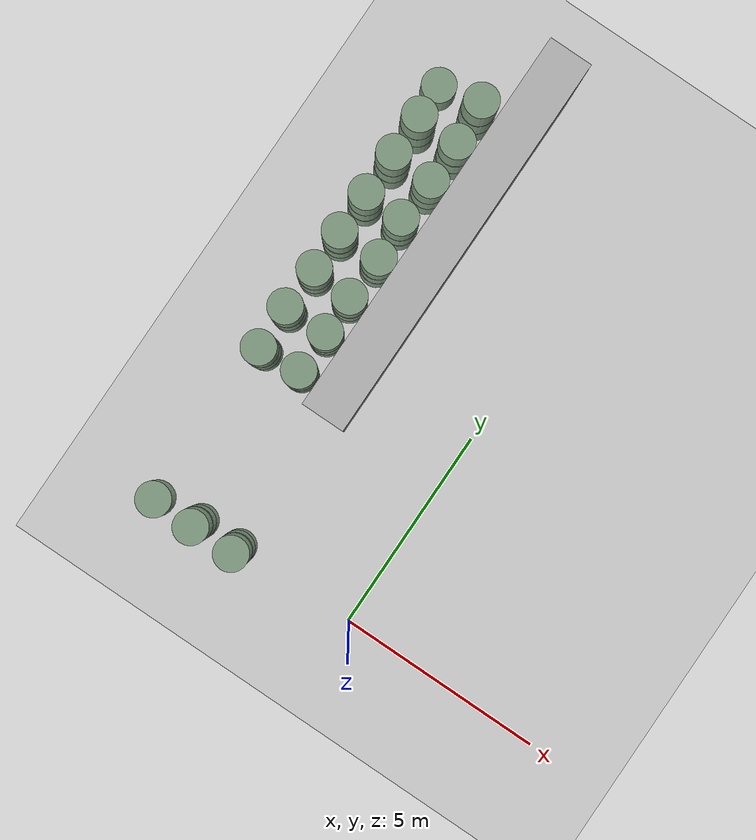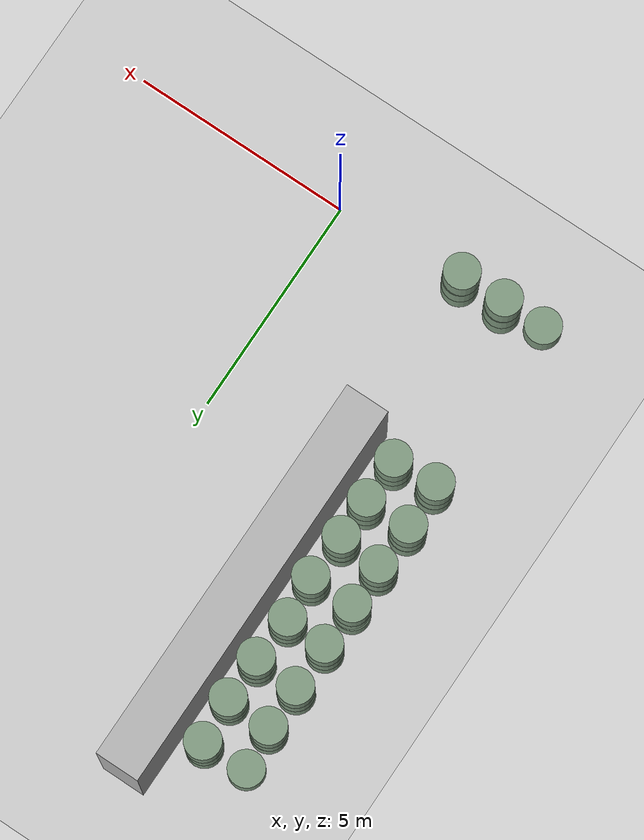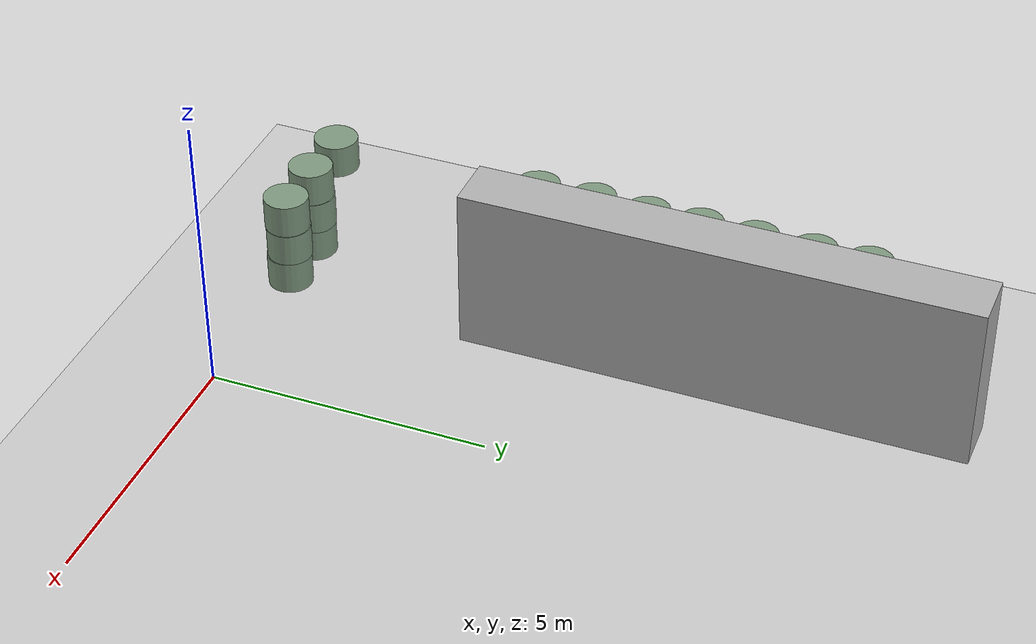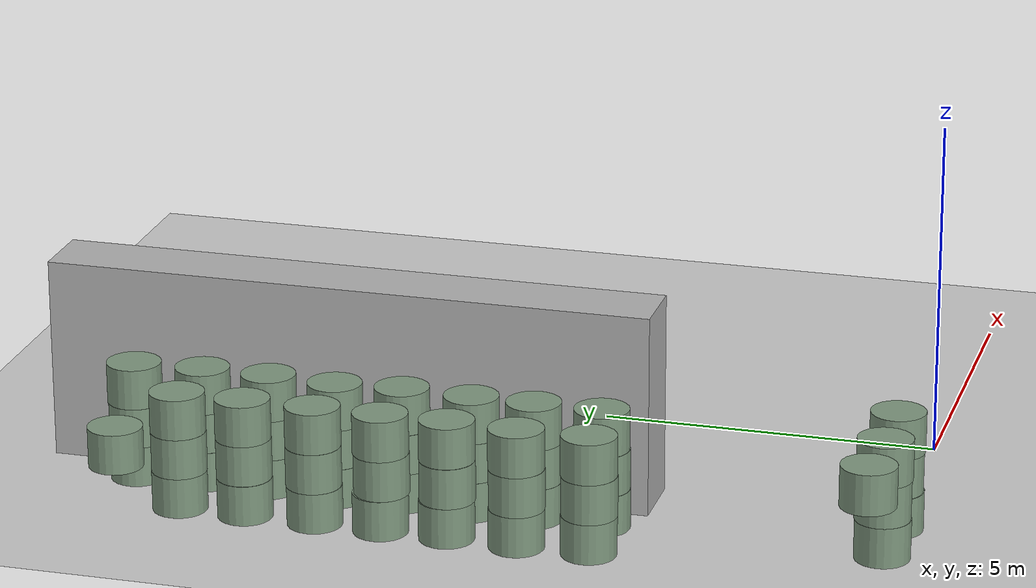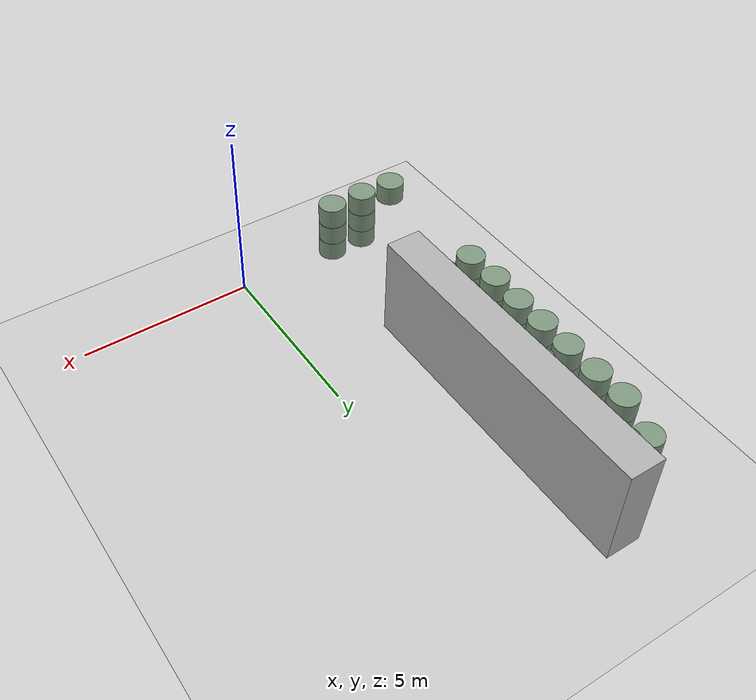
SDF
<sdf version="1.6">
 <world name="default">
  <include><uri>model://ground_plane</uri></include>
  <model name="wall_3">
   <pose>-3.0 8.0 1.5 0 -0 0</pose>
   <static>True</static>
   <link name="link">
    <inertial>
     <mass>100</mass>
     <inertia>
      <ixx>0.166667</ixx>
      <ixy>0</ixy>
      <ixz>0</ixz>
      <iyy>0.166667</iyy>
      <iyz>0</iyz>
      <izz>0.166667</izz>
     </inertia>
    </inertial>
    <collision name="collision"><geometry><box><size>1.0 9.0 3.0</size></box></geometry></collision>
    <visual name="visual">
     <geometry><box><size>1.0 9.0 3.0</size></box></geometry>
     <material><ambient>0.7 0.7 0.7 1</ambient><diffuse>0.7 0.7 0.7 1</diffuse></material>
    </visual>
   </link>
  </model>
  <model name="unit_cylinder_73">
   <pose>-5.04021471398 0.0397280246064 1.5 0 -0 0</pose>
   <static>True</static>
   <link name="link">
    <inertial>
     <mass>100</mass>
     <inertia><ixx>0.145833</ixx><ixy>0</ixy><ixz>0</ixz><iyy>0.145833</iyy><iyz>0</iyz><izz>0.125</izz></inertia>
    </inertial>
    <collision name="collision">
     <geometry><cylinder><radius>0.4</radius><length>0.6</length></cylinder></geometry>
     <max_contacts>100</max_contacts>
    </collision>
    <visual name="visual">
     <geometry><cylinder><radius>0.4</radius><length>0.6</length></cylinder></geometry>
     <material><ambient>0.5 0.6 0.5 1</ambient><diffuse>0.5 0.6 0.5 1</diffuse></material>
    </visual>
   </link>
  </model>
  <model name="unit_cylinder_74">
   <pose>-4.99387593713 3.97930766944 0.3 0 -0 0</pose>
   <static>True</static>
   <link name="link">
    <inertial>
     <mass>100</mass>
     <inertia><ixx>0.145833</ixx><ixy>0</ixy><ixz>0</ixz><iyy>0.145833</iyy><iyz>0</iyz><izz>0.125</izz></inertia>
    </inertial>
    <collision name="collision">
     <geometry><cylinder><radius>0.4</radius><length>0.6</length></cylinder></geometry>
     <max_contacts>100</max_contacts>
    </collision>
    <visual name="visual">
     <geometry><cylinder><radius>0.4</radius><length>0.6</length></cylinder></geometry>
     <material><ambient>0.5 0.6 0.5 1</ambient><diffuse>0.5 0.6 0.5 1</diffuse></material>
    </visual>
   </link>
  </model>
  <model name="unit_cylinder_75">
   <pose>-5.00287815324 3.96971542466 0.9 0 -0 0</pose>
   <static>True</static>
   <link name="link">
    <inertial>
     <mass>100</mass>
     <inertia><ixx>0.145833</ixx><ixy>0</ixy><ixz>0</ixz><iyy>0.145833</iyy><iyz>0</iyz><izz>0.125</izz></inertia>
    </inertial>
    <collision name="collision">
     <geometry><cylinder><radius>0.4</radius><length>0.6</length></cylinder></geometry>
     <max_contacts>100</max_contacts>
    </collision>
    <visual name="visual">
     <geometry><cylinder><radius>0.4</radius><length>0.6</length></cylinder></geometry>
     <material><ambient>0.5 0.6 0.5 1</ambient><diffuse>0.5 0.6 0.5 1</diffuse></material>
    </visual>
   </link>
  </model>
  <model name="unit_cylinder_76">
   <pose>-5.00889074556 3.97547470368 1.5 0 -0 0</pose>
   <static>True</static>
   <link name="link">
    <inertial>
     <mass>100</mass>
     <inertia><ixx>0.145833</ixx><ixy>0</ixy><ixz>0</ixz><iyy>0.145833</iyy><iyz>0</iyz><izz>0.125</izz></inertia>
    </inertial>
    <collision name="collision">
     <geometry><cylinder><radius>0.4</radius><length>0.6</length></cylinder></geometry>
     <max_contacts>100</max_contacts>
    </collision>
    <visual name="visual">
     <geometry><cylinder><radius>0.4</radius><length>0.6</length></cylinder></geometry>
     <material><ambient>0.5 0.6 0.5 1</ambient><diffuse>0.5 0.6 0.5 1</diffuse></material>
    </visual>
   </link>
  </model>
  <model name="unit_cylinder_77">
   <pose>-5.02037749495 5.01862694943 0.3 0 -0 0</pose>
   <static>True</static>
   <link name="link">
    <inertial>
     <mass>100</mass>
     <inertia><ixx>0.145833</ixx><ixy>0</ixy><ixz>0</ixz><iyy>0.145833</iyy><iyz>0</iyz><izz>0.125</izz></inertia>
    </inertial>
    <collision name="collision">
     <geometry><cylinder><radius>0.4</radius><length>0.6</length></cylinder></geometry>
     <max_contacts>100</max_contacts>
    </collision>
    <visual name="visual">
     <geometry><cylinder><radius>0.4</radius><length>0.6</length></cylinder></geometry>
     <material><ambient>0.5 0.6 0.5 1</ambient><diffuse>0.5 0.6 0.5 1</diffuse></material>
    </visual>
   </link>
  </model>
  <model name="unit_cylinder_78">
   <pose>-5.02425778565 5.01079845286 0.9 0 -0 0</pose>
   <static>True</static>
   <link name="link">
    <inertial>
     <mass>100</mass>
     <inertia><ixx>0.145833</ixx><ixy>0</ixy><ixz>0</ixz><iyy>0.145833</iyy><iyz>0</iyz><izz>0.125</izz></inertia>
    </inertial>
    <collision name="collision">
     <geometry><cylinder><radius>0.4</radius><length>0.6</length></cylinder></geometry>
     <max_contacts>100</max_contacts>
    </collision>
    <visual name="visual">
     <geometry><cylinder><radius>0.4</radius><length>0.6</length></cylinder></geometry>
     <material><ambient>0.5 0.6 0.5 1</ambient><diffuse>0.5 0.6 0.5 1</diffuse></material>
    </visual>
   </link>
  </model>
  <model name="unit_cylinder_79">
   <pose>-5.02847744093 5.01702215098 1.5 0 -0 0</pose>
   <static>True</static>
   <link name="link">
    <inertial>
     <mass>100</mass>
     <inertia><ixx>0.145833</ixx><ixy>0</ixy><ixz>0</ixz><iyy>0.145833</iyy><iyz>0</iyz><izz>0.125</izz></inertia>
    </inertial>
    <collision name="collision">
     <geometry><cylinder><radius>0.4</radius><length>0.6</length></cylinder></geometry>
     <max_contacts>100</max_contacts>
    </collision>
    <visual name="visual">
     <geometry><cylinder><radius>0.4</radius><length>0.6</length></cylinder></geometry>
     <material><ambient>0.5 0.6 0.5 1</ambient><diffuse>0.5 0.6 0.5 1</diffuse></material>
    </visual>
   </link>
  </model>
  <model name="unit_cylinder_80">
   <pose>-4.9890560584 6.04523578018 0.3 0 -0 0</pose>
   <static>True</static>
   <link name="link">
    <inertial>
     <mass>100</mass>
     <inertia><ixx>0.145833</ixx><ixy>0</ixy><ixz>0</ixz><iyy>0.145833</iyy><iyz>0</iyz><izz>0.125</izz></inertia>
    </inertial>
    <collision name="collision">
     <geometry><cylinder><radius>0.4</radius><length>0.6</length></cylinder></geometry>
     <max_contacts>100</max_contacts>
    </collision>
    <visual name="visual">
     <geometry><cylinder><radius>0.4</radius><length>0.6</length></cylinder></geometry>
     <material><ambient>0.5 0.6 0.5 1</ambient><diffuse>0.5 0.6 0.5 1</diffuse></material>
    </visual>
   </link>
  </model>
  <model name="unit_cylinder_81">
   <pose>-4.98558762017 6.03283842369 0.9 0 -0 0</pose>
   <static>True</static>
   <link name="link">
    <inertial>
     <mass>100</mass>
     <inertia><ixx>0.145833</ixx><ixy>0</ixy><ixz>0</ixz><iyy>0.145833</iyy><iyz>0</iyz><izz>0.125</izz></inertia>
    </inertial>
    <collision name="collision">
     <geometry><cylinder><radius>0.4</radius><length>0.6</length></cylinder></geometry>
     <max_contacts>100</max_contacts>
    </collision>
    <visual name="visual">
     <geometry><cylinder><radius>0.4</radius><length>0.6</length></cylinder></geometry>
     <material><ambient>0.5 0.6 0.5 1</ambient><diffuse>0.5 0.6 0.5 1</diffuse></material>
    </visual>
   </link>
  </model>
  <model name="unit_cylinder_82">
   <pose>-4.97623334537 6.03796178557 1.5 0 -0 0</pose>
   <static>True</static>
   <link name="link">
    <inertial>
     <mass>100</mass>
     <inertia><ixx>0.145833</ixx><ixy>0</ixy><ixz>0</ixz><iyy>0.145833</iyy><iyz>0</iyz><izz>0.125</izz></inertia>
    </inertial>
    <collision name="collision">
     <geometry><cylinder><radius>0.4</radius><length>0.6</length></cylinder></geometry>
     <max_contacts>100</max_contacts>
    </collision>
    <visual name="visual">
     <geometry><cylinder><radius>0.4</radius><length>0.6</length></cylinder></geometry>
     <material><ambient>0.5 0.6 0.5 1</ambient><diffuse>0.5 0.6 0.5 1</diffuse></material>
    </visual>
   </link>
  </model>
  <model name="unit_cylinder_83">
   <pose>-4.98692230404 7.01906322322 0.3 0 -0 0</pose>
   <static>True</static>
   <link name="link">
    <inertial>
     <mass>100</mass>
     <inertia><ixx>0.145833</ixx><ixy>0</ixy><ixz>0</ixz><iyy>0.145833</iyy><iyz>0</iyz><izz>0.125</izz></inertia>
    </inertial>
    <collision name="collision">
     <geometry><cylinder><radius>0.4</radius><length>0.6</length></cylinder></geometry>
     <max_contacts>100</max_contacts>
    </collision>
    <visual name="visual">
     <geometry><cylinder><radius>0.4</radius><length>0.6</length></cylinder></geometry>
     <material><ambient>0.5 0.6 0.5 1</ambient><diffuse>0.5 0.6 0.5 1</diffuse></material>
    </visual>
   </link>
  </model>
  <model name="unit_cylinder_84">
   <pose>-4.9704436581 7.00088728899 0.9 0 -0 0</pose>
   <static>True</static>
   <link name="link">
    <inertial>
     <mass>100</mass>
     <inertia><ixx>0.145833</ixx><ixy>0</ixy><ixz>0</ixz><iyy>0.145833</iyy><iyz>0</iyz><izz>0.125</izz></inertia>
    </inertial>
    <collision name="collision">
     <geometry><cylinder><radius>0.4</radius><length>0.6</length></cylinder></geometry>
     <max_contacts>100</max_contacts>
    </collision>
    <visual name="visual">
     <geometry><cylinder><radius>0.4</radius><length>0.6</length></cylinder></geometry>
     <material><ambient>0.5 0.6 0.5 1</ambient><diffuse>0.5 0.6 0.5 1</diffuse></material>
    </visual>
   </link>
  </model>
  <model name="unit_cylinder_85">
   <pose>-4.98132532043 7.00875174795 1.5 0 -0 0</pose>
   <static>True</static>
   <link name="link">
    <inertial>
     <mass>100</mass>
     <inertia><ixx>0.145833</ixx><ixy>0</ixy><ixz>0</ixz><iyy>0.145833</iyy><iyz>0</iyz><izz>0.125</izz></inertia>
    </inertial>
    <collision name="collision">
     <geometry><cylinder><radius>0.4</radius><length>0.6</length></cylinder></geometry>
     <max_contacts>100</max_contacts>
    </collision>
    <visual name="visual">
     <geometry><cylinder><radius>0.4</radius><length>0.6</length></cylinder></geometry>
     <material><ambient>0.5 0.6 0.5 1</ambient><diffuse>0.5 0.6 0.5 1</diffuse></material>
    </visual>
   </link>
  </model>
  <model name="unit_cylinder_86">
   <pose>-4.97207345627 7.99857737981 0.3 0 -0 0</pose>
   <static>True</static>
   <link name="link">
    <inertial>
     <mass>100</mass>
     <inertia><ixx>0.145833</ixx><ixy>0</ixy><ixz>0</ixz><iyy>0.145833</iyy><iyz>0</iyz><izz>0.125</izz></inertia>
    </inertial>
    <collision name="collision">
     <geometry><cylinder><radius>0.4</radius><length>0.6</length></cylinder></geometry>
     <max_contacts>100</max_contacts>
    </collision>
    <visual name="visual">
     <geometry><cylinder><radius>0.4</radius><length>0.6</length></cylinder></geometry>
     <material><ambient>0.5 0.6 0.5 1</ambient><diffuse>0.5 0.6 0.5 1</diffuse></material>
    </visual>
   </link>
  </model>
  <model name="unit_cylinder_87">
   <pose>-4.97549348963 8.00673402926 0.9 0 -0 0</pose>
   <static>True</static>
   <link name="link">
    <inertial>
     <mass>100</mass>
     <inertia><ixx>0.145833</ixx><ixy>0</ixy><ixz>0</ixz><iyy>0.145833</iyy><iyz>0</iyz><izz>0.125</izz></inertia>
    </inertial>
    <collision name="collision">
     <geometry><cylinder><radius>0.4</radius><length>0.6</length></cylinder></geometry>
     <max_contacts>100</max_contacts>
    </collision>
    <visual name="visual">
     <geometry><cylinder><radius>0.4</radius><length>0.6</length></cylinder></geometry>
     <material><ambient>0.5 0.6 0.5 1</ambient><diffuse>0.5 0.6 0.5 1</diffuse></material>
    </visual>
   </link>
  </model>
  <model name="unit_cylinder_88">
   <pose>-4.96968289684 8.00892009027 1.5 0 -0 0</pose>
   <static>True</static>
   <link name="link">
    <inertial>
     <mass>100</mass>
     <inertia><ixx>0.145833</ixx><ixy>0</ixy><ixz>0</ixz><iyy>0.145833</iyy><iyz>0</iyz><izz>0.125</izz></inertia>
    </inertial>
    <collision name="collision">
     <geometry><cylinder><radius>0.4</radius><length>0.6</length></cylinder></geometry>
     <max_contacts>100</max_contacts>
    </collision>
    <visual name="visual">
     <geometry><cylinder><radius>0.4</radius><length>0.6</length></cylinder></geometry>
     <material><ambient>0.5 0.6 0.5 1</ambient><diffuse>0.5 0.6 0.5 1</diffuse></material>
    </visual>
   </link>
  </model>
  <model name="unit_cylinder_89">
   <pose>-4.96635382965 9.04311331205 0.3 0 -0 0</pose>
   <static>True</static>
   <link name="link">
    <inertial>
     <mass>100</mass>
     <inertia><ixx>0.145833</ixx><ixy>0</ixy><ixz>0</ixz><iyy>0.145833</iyy><iyz>0</iyz><izz>0.125</izz></inertia>
    </inertial>
    <collision name="collision">
     <geometry><cylinder><radius>0.4</radius><length>0.6</length></cylinder></geometry>
     <max_contacts>100</max_contacts>
    </collision>
    <visual name="visual">
     <geometry><cylinder><radius>0.4</radius><length>0.6</length></cylinder></geometry>
     <material><ambient>0.5 0.6 0.5 1</ambient><diffuse>0.5 0.6 0.5 1</diffuse></material>
    </visual>
   </link>
  </model>
  <model name="unit_cylinder_90">
   <pose>-4.95809822181 9.04903456977 0.9 0 -0 0</pose>
   <static>True</static>
   <link name="link">
    <inertial>
     <mass>100</mass>
     <inertia><ixx>0.145833</ixx><ixy>0</ixy><ixz>0</ixz><iyy>0.145833</iyy><iyz>0</iyz><izz>0.125</izz></inertia>
    </inertial>
    <collision name="collision">
     <geometry><cylinder><radius>0.4</radius><length>0.6</length></cylinder></geometry>
     <max_contacts>100</max_contacts>
    </collision>
    <visual name="visual">
     <geometry><cylinder><radius>0.4</radius><length>0.6</length></cylinder></geometry>
     <material><ambient>0.5 0.6 0.5 1</ambient><diffuse>0.5 0.6 0.5 1</diffuse></material>
    </visual>
   </link>
  </model>
  <model name="unit_cylinder_91">
   <pose>-4.96240943617 9.05095245156 1.5 0 -0 0</pose>
   <static>True</static>
   <link name="link">
    <inertial>
     <mass>100</mass>
     <inertia><ixx>0.145833</ixx><ixy>0</ixy><ixz>0</ixz><iyy>0.145833</iyy><iyz>0</iyz><izz>0.125</izz></inertia>
    </inertial>
    <collision name="collision">
     <geometry><cylinder><radius>0.4</radius><length>0.6</length></cylinder></geometry>
     <max_contacts>100</max_contacts>
    </collision>
    <visual name="visual">
     <geometry><cylinder><radius>0.4</radius><length>0.6</length></cylinder></geometry>
     <material><ambient>0.5 0.6 0.5 1</ambient><diffuse>0.5 0.6 0.5 1</diffuse></material>
    </visual>
   </link>
  </model>
  <model name="unit_cylinder_92">
   <pose>-4.94802869582 10.0317854481 0.3 0 -0 0</pose>
   <static>True</static>
   <link name="link">
    <inertial>
     <mass>100</mass>
     <inertia><ixx>0.145833</ixx><ixy>0</ixy><ixz>0</ixz><iyy>0.145833</iyy><iyz>0</iyz><izz>0.125</izz></inertia>
    </inertial>
    <collision name="collision">
     <geometry><cylinder><radius>0.4</radius><length>0.6</length></cylinder></geometry>
     <max_contacts>100</max_contacts>
    </collision>
    <visual name="visual">
     <geometry><cylinder><radius>0.4</radius><length>0.6</length></cylinder></geometry>
     <material><ambient>0.5 0.6 0.5 1</ambient><diffuse>0.5 0.6 0.5 1</diffuse></material>
    </visual>
   </link>
  </model>
  <model name="unit_cylinder_93">
   <pose>-4.9606607863 10.0241177991 0.9 0 -0 0</pose>
   <static>True</static>
   <link name="link">
    <inertial>
     <mass>100</mass>
     <inertia><ixx>0.145833</ixx><ixy>0</ixy><ixz>0</ixz><iyy>0.145833</iyy><iyz>0</iyz><izz>0.125</izz></inertia>
    </inertial>
    <collision name="collision">
     <geometry><cylinder><radius>0.4</radius><length>0.6</length></cylinder></geometry>
     <max_contacts>100</max_contacts>
    </collision>
    <visual name="visual">
     <geometry><cylinder><radius>0.4</radius><length>0.6</length></cylinder></geometry>
     <material><ambient>0.5 0.6 0.5 1</ambient><diffuse>0.5 0.6 0.5 1</diffuse></material>
    </visual>
   </link>
  </model>
  <model name="unit_cylinder_94">
   <pose>-4.96216552182 10.0285224961 1.5 0 -0 0</pose>
   <static>True</static>
   <link name="link">
    <inertial>
     <mass>100</mass>
     <inertia><ixx>0.145833</ixx><ixy>0</ixy><ixz>0</ixz><iyy>0.145833</iyy><iyz>0</iyz><izz>0.125</izz></inertia>
    </inertial>
    <collision name="collision">
     <geometry><cylinder><radius>0.4</radius><length>0.6</length></cylinder></geometry>
     <max_contacts>100</max_contacts>
    </collision>
    <visual name="visual">
     <geometry><cylinder><radius>0.4</radius><length>0.6</length></cylinder></geometry>
     <material><ambient>0.5 0.6 0.5 1</ambient><diffuse>0.5 0.6 0.5 1</diffuse></material>
    </visual>
   </link>
  </model>
  <model name="unit_cylinder_96">
   <pose>-5.03437643971 10.9544979243 0.9 0 -0 0</pose>
   <static>True</static>
   <link name="link">
    <inertial>
     <mass>100</mass>
     <inertia><ixx>0.145833</ixx><ixy>0</ixy><ixz>0</ixz><iyy>0.145833</iyy><iyz>0</iyz><izz>0.125</izz></inertia>
    </inertial>
    <collision name="collision">
     <geometry><cylinder><radius>0.4</radius><length>0.6</length></cylinder></geometry>
     <max_contacts>100</max_contacts>
    </collision>
    <visual name="visual">
     <geometry><cylinder><radius>0.4</radius><length>0.6</length></cylinder></geometry>
     <material><ambient>0.5 0.6 0.5 1</ambient><diffuse>0.5 0.6 0.5 1</diffuse></material>
    </visual>
   </link>
  </model>
  <model name="unit_cylinder_110">
   <pose>-4.04723817439 0.00512845933908 0.3 0 -0 0</pose>
   <static>True</static>
   <link name="link">
    <inertial>
     <mass>100</mass>
     <inertia><ixx>0.145833</ixx><ixy>0</ixy><ixz>0</ixz><iyy>0.145833</iyy><iyz>0</iyz><izz>0.125</izz></inertia>
    </inertial>
    <collision name="collision">
     <geometry><cylinder><radius>0.4</radius><length>0.6</length></cylinder></geometry>
     <max_contacts>100</max_contacts>
    </collision>
    <visual name="visual">
     <geometry><cylinder><radius>0.4</radius><length>0.6</length></cylinder></geometry>
     <material><ambient>0.5 0.6 0.5 1</ambient><diffuse>0.5 0.6 0.5 1</diffuse></material>
    </visual>
   </link>
  </model>
  <model name="unit_cylinder_111">
   <pose>-4.04913134576 0.015037255451 0.9 0 -0 0</pose>
   <static>True</static>
   <link name="link">
    <inertial>
     <mass>100</mass>
     <inertia><ixx>0.145833</ixx><ixy>0</ixy><ixz>0</ixz><iyy>0.145833</iyy><iyz>0</iyz><izz>0.125</izz></inertia>
    </inertial>
    <collision name="collision">
     <geometry><cylinder><radius>0.4</radius><length>0.6</length></cylinder></geometry>
     <max_contacts>100</max_contacts>
    </collision>
    <visual name="visual">
     <geometry><cylinder><radius>0.4</radius><length>0.6</length></cylinder></geometry>
     <material><ambient>0.5 0.6 0.5 1</ambient><diffuse>0.5 0.6 0.5 1</diffuse></material>
    </visual>
   </link>
  </model>
  <model name="unit_cylinder_112">
   <pose>-4.05241246791 -0.000900423926262 1.5 0 -0 0</pose>
   <static>True</static>
   <link name="link">
    <inertial>
     <mass>100</mass>
     <inertia><ixx>0.145833</ixx><ixy>0</ixy><ixz>0</ixz><iyy>0.145833</iyy><iyz>0</iyz><izz>0.125</izz></inertia>
    </inertial>
    <collision name="collision">
     <geometry><cylinder><radius>0.4</radius><length>0.6</length></cylinder></geometry>
     <max_contacts>100</max_contacts>
    </collision>
    <visual name="visual">
     <geometry><cylinder><radius>0.4</radius><length>0.6</length></cylinder></geometry>
     <material><ambient>0.5 0.6 0.5 1</ambient><diffuse>0.5 0.6 0.5 1</diffuse></material>
    </visual>
   </link>
  </model>
  <model name="unit_cylinder_113">
   <pose>-4.02140064889 4.03278582527 0.3 0 -0 0</pose>
   <static>True</static>
   <link name="link">
    <inertial>
     <mass>100</mass>
     <inertia><ixx>0.145833</ixx><ixy>0</ixy><ixz>0</ixz><iyy>0.145833</iyy><iyz>0</iyz><izz>0.125</izz></inertia>
    </inertial>
    <collision name="collision">
     <geometry><cylinder><radius>0.4</radius><length>0.6</length></cylinder></geometry>
     <max_contacts>100</max_contacts>
    </collision>
    <visual name="visual">
     <geometry><cylinder><radius>0.4</radius><length>0.6</length></cylinder></geometry>
     <material><ambient>0.5 0.6 0.5 1</ambient><diffuse>0.5 0.6 0.5 1</diffuse></material>
    </visual>
   </link>
  </model>
  <model name="unit_cylinder_114">
   <pose>-4.01565315297 4.03904634977 0.9 0 -0 0</pose>
   <static>True</static>
   <link name="link">
    <inertial>
     <mass>100</mass>
     <inertia><ixx>0.145833</ixx><ixy>0</ixy><ixz>0</ixz><iyy>0.145833</iyy><iyz>0</iyz><izz>0.125</izz></inertia>
    </inertial>
    <collision name="collision">
     <geometry><cylinder><radius>0.4</radius><length>0.6</length></cylinder></geometry>
     <max_contacts>100</max_contacts>
    </collision>
    <visual name="visual">
     <geometry><cylinder><radius>0.4</radius><length>0.6</length></cylinder></geometry>
     <material><ambient>0.5 0.6 0.5 1</ambient><diffuse>0.5 0.6 0.5 1</diffuse></material>
    </visual>
   </link>
  </model>
  <model name="unit_cylinder_115">
   <pose>-4.01993486253 4.04991413479 1.5 0 -0 0</pose>
   <static>True</static>
   <link name="link">
    <inertial>
     <mass>100</mass>
     <inertia><ixx>0.145833</ixx><ixy>0</ixy><ixz>0</ixz><iyy>0.145833</iyy><iyz>0</iyz><izz>0.125</izz></inertia>
    </inertial>
    <collision name="collision">
     <geometry><cylinder><radius>0.4</radius><length>0.6</length></cylinder></geometry>
     <max_contacts>100</max_contacts>
    </collision>
    <visual name="visual">
     <geometry><cylinder><radius>0.4</radius><length>0.6</length></cylinder></geometry>
     <material><ambient>0.5 0.6 0.5 1</ambient><diffuse>0.5 0.6 0.5 1</diffuse></material>
    </visual>
   </link>
  </model>
  <model name="unit_cylinder_116">
   <pose>-4.00896992471 5.03351478211 0.3 0 -0 0</pose>
   <static>True</static>
   <link name="link">
    <inertial>
     <mass>100</mass>
     <inertia><ixx>0.145833</ixx><ixy>0</ixy><ixz>0</ixz><iyy>0.145833</iyy><iyz>0</iyz><izz>0.125</izz></inertia>
    </inertial>
    <collision name="collision">
     <geometry><cylinder><radius>0.4</radius><length>0.6</length></cylinder></geometry>
     <max_contacts>100</max_contacts>
    </collision>
    <visual name="visual">
     <geometry><cylinder><radius>0.4</radius><length>0.6</length></cylinder></geometry>
     <material><ambient>0.5 0.6 0.5 1</ambient><diffuse>0.5 0.6 0.5 1</diffuse></material>
    </visual>
   </link>
  </model>
  <model name="unit_cylinder_117">
   <pose>-4.01016514033 5.03959890592 0.9 0 -0 0</pose>
   <static>True</static>
   <link name="link">
    <inertial>
     <mass>100</mass>
     <inertia><ixx>0.145833</ixx><ixy>0</ixy><ixz>0</ixz><iyy>0.145833</iyy><iyz>0</iyz><izz>0.125</izz></inertia>
    </inertial>
    <collision name="collision">
     <geometry><cylinder><radius>0.4</radius><length>0.6</length></cylinder></geometry>
     <max_contacts>100</max_contacts>
    </collision>
    <visual name="visual">
     <geometry><cylinder><radius>0.4</radius><length>0.6</length></cylinder></geometry>
     <material><ambient>0.5 0.6 0.5 1</ambient><diffuse>0.5 0.6 0.5 1</diffuse></material>
    </visual>
   </link>
  </model>
  <model name="unit_cylinder_118">
   <pose>-4.01353384396 5.04141080113 1.5 0 -0 0</pose>
   <static>True</static>
   <link name="link">
    <inertial>
     <mass>100</mass>
     <inertia><ixx>0.145833</ixx><ixy>0</ixy><ixz>0</ixz><iyy>0.145833</iyy><iyz>0</iyz><izz>0.125</izz></inertia>
    </inertial>
    <collision name="collision">
     <geometry><cylinder><radius>0.4</radius><length>0.6</length></cylinder></geometry>
     <max_contacts>100</max_contacts>
    </collision>
    <visual name="visual">
     <geometry><cylinder><radius>0.4</radius><length>0.6</length></cylinder></geometry>
     <material><ambient>0.5 0.6 0.5 1</ambient><diffuse>0.5 0.6 0.5 1</diffuse></material>
    </visual>
   </link>
  </model>
  <model name="unit_cylinder_119">
   <pose>-4.01533523921 5.95899588876 0.3 0 -0 0</pose>
   <static>True</static>
   <link name="link">
    <inertial>
     <mass>100</mass>
     <inertia><ixx>0.145833</ixx><ixy>0</ixy><ixz>0</ixz><iyy>0.145833</iyy><iyz>0</iyz><izz>0.125</izz></inertia>
    </inertial>
    <collision name="collision">
     <geometry><cylinder><radius>0.4</radius><length>0.6</length></cylinder></geometry>
     <max_contacts>100</max_contacts>
    </collision>
    <visual name="visual">
     <geometry><cylinder><radius>0.4</radius><length>0.6</length></cylinder></geometry>
     <material><ambient>0.5 0.6 0.5 1</ambient><diffuse>0.5 0.6 0.5 1</diffuse></material>
    </visual>
   </link>
  </model>
  <model name="unit_cylinder_120">
   <pose>-4.00525479528 5.95128391176 0.9 0 -0 0</pose>
   <static>True</static>
   <link name="link">
    <inertial>
     <mass>100</mass>
     <inertia><ixx>0.145833</ixx><ixy>0</ixy><ixz>0</ixz><iyy>0.145833</iyy><iyz>0</iyz><izz>0.125</izz></inertia>
    </inertial>
    <collision name="collision">
     <geometry><cylinder><radius>0.4</radius><length>0.6</length></cylinder></geometry>
     <max_contacts>100</max_contacts>
    </collision>
    <visual name="visual">
     <geometry><cylinder><radius>0.4</radius><length>0.6</length></cylinder></geometry>
     <material><ambient>0.5 0.6 0.5 1</ambient><diffuse>0.5 0.6 0.5 1</diffuse></material>
    </visual>
   </link>
  </model>
  <model name="unit_cylinder_121">
   <pose>-4.00914709232 5.95970747639 1.5 0 -0 0</pose>
   <static>True</static>
   <link name="link">
    <inertial>
     <mass>100</mass>
     <inertia><ixx>0.145833</ixx><ixy>0</ixy><ixz>0</ixz><iyy>0.145833</iyy><iyz>0</iyz><izz>0.125</izz></inertia>
    </inertial>
    <collision name="collision">
     <geometry><cylinder><radius>0.4</radius><length>0.6</length></cylinder></geometry>
     <max_contacts>100</max_contacts>
    </collision>
    <visual name="visual">
     <geometry><cylinder><radius>0.4</radius><length>0.6</length></cylinder></geometry>
     <material><ambient>0.5 0.6 0.5 1</ambient><diffuse>0.5 0.6 0.5 1</diffuse></material>
    </visual>
   </link>
  </model>
  <model name="unit_cylinder_122">
   <pose>-3.95768749601 6.98994476497 0.3 0 -0 0</pose>
   <static>True</static>
   <link name="link">
    <inertial>
     <mass>100</mass>
     <inertia><ixx>0.145833</ixx><ixy>0</ixy><ixz>0</ixz><iyy>0.145833</iyy><iyz>0</iyz><izz>0.125</izz></inertia>
    </inertial>
    <collision name="collision">
     <geometry><cylinder><radius>0.4</radius><length>0.6</length></cylinder></geometry>
     <max_contacts>100</max_contacts>
    </collision>
    <visual name="visual">
     <geometry><cylinder><radius>0.4</radius><length>0.6</length></cylinder></geometry>
     <material><ambient>0.5 0.6 0.5 1</ambient><diffuse>0.5 0.6 0.5 1</diffuse></material>
    </visual>
   </link>
  </model>
  <model name="unit_cylinder_123">
   <pose>-3.96264836524 6.99539087838 0.9 0 -0 0</pose>
   <static>True</static>
   <link name="link">
    <inertial>
     <mass>100</mass>
     <inertia><ixx>0.145833</ixx><ixy>0</ixy><ixz>0</ixz><iyy>0.145833</iyy><iyz>0</iyz><izz>0.125</izz></inertia>
    </inertial>
    <collision name="collision">
     <geometry><cylinder><radius>0.4</radius><length>0.6</length></cylinder></geometry>
     <max_contacts>100</max_contacts>
    </collision>
    <visual name="visual">
     <geometry><cylinder><radius>0.4</radius><length>0.6</length></cylinder></geometry>
     <material><ambient>0.5 0.6 0.5 1</ambient><diffuse>0.5 0.6 0.5 1</diffuse></material>
    </visual>
   </link>
  </model>
  <model name="unit_cylinder_124">
   <pose>-3.95825727506 7.00209275192 1.5 0 -0 0</pose>
   <static>True</static>
   <link name="link">
    <inertial>
     <mass>100</mass>
     <inertia><ixx>0.145833</ixx><ixy>0</ixy><ixz>0</ixz><iyy>0.145833</iyy><iyz>0</iyz><izz>0.125</izz></inertia>
    </inertial>
    <collision name="collision">
     <geometry><cylinder><radius>0.4</radius><length>0.6</length></cylinder></geometry>
     <max_contacts>100</max_contacts>
    </collision>
    <visual name="visual">
     <geometry><cylinder><radius>0.4</radius><length>0.6</length></cylinder></geometry>
     <material><ambient>0.5 0.6 0.5 1</ambient><diffuse>0.5 0.6 0.5 1</diffuse></material>
    </visual>
   </link>
  </model>
  <model name="unit_cylinder_125">
   <pose>-4.03476145688 7.96784662187 0.3 0 -0 0</pose>
   <static>True</static>
   <link name="link">
    <inertial>
     <mass>100</mass>
     <inertia><ixx>0.145833</ixx><ixy>0</ixy><ixz>0</ixz><iyy>0.145833</iyy><iyz>0</iyz><izz>0.125</izz></inertia>
    </inertial>
    <collision name="collision">
     <geometry><cylinder><radius>0.4</radius><length>0.6</length></cylinder></geometry>
     <max_contacts>100</max_contacts>
    </collision>
    <visual name="visual">
     <geometry><cylinder><radius>0.4</radius><length>0.6</length></cylinder></geometry>
     <material><ambient>0.5 0.6 0.5 1</ambient><diffuse>0.5 0.6 0.5 1</diffuse></material>
    </visual>
   </link>
  </model>
  <model name="unit_cylinder_126">
   <pose>-4.03411924976 7.976492077 0.9 0 -0 0</pose>
   <static>True</static>
   <link name="link">
    <inertial>
     <mass>100</mass>
     <inertia><ixx>0.145833</ixx><ixy>0</ixy><ixz>0</ixz><iyy>0.145833</iyy><iyz>0</iyz><izz>0.125</izz></inertia>
    </inertial>
    <collision name="collision">
     <geometry><cylinder><radius>0.4</radius><length>0.6</length></cylinder></geometry>
     <max_contacts>100</max_contacts>
    </collision>
    <visual name="visual">
     <geometry><cylinder><radius>0.4</radius><length>0.6</length></cylinder></geometry>
     <material><ambient>0.5 0.6 0.5 1</ambient><diffuse>0.5 0.6 0.5 1</diffuse></material>
    </visual>
   </link>
  </model>
  <model name="unit_cylinder_127">
   <pose>-4.04630281973 7.97511213229 1.5 0 -0 0</pose>
   <static>True</static>
   <link name="link">
    <inertial>
     <mass>100</mass>
     <inertia><ixx>0.145833</ixx><ixy>0</ixy><ixz>0</ixz><iyy>0.145833</iyy><iyz>0</iyz><izz>0.125</izz></inertia>
    </inertial>
    <collision name="collision">
     <geometry><cylinder><radius>0.4</radius><length>0.6</length></cylinder></geometry>
     <max_contacts>100</max_contacts>
    </collision>
    <visual name="visual">
     <geometry><cylinder><radius>0.4</radius><length>0.6</length></cylinder></geometry>
     <material><ambient>0.5 0.6 0.5 1</ambient><diffuse>0.5 0.6 0.5 1</diffuse></material>
    </visual>
   </link>
  </model>
  <model name="unit_cylinder_128">
   <pose>-3.96976708586 9.00902481902 0.3 0 -0 0</pose>
   <static>True</static>
   <link name="link">
    <inertial>
     <mass>100</mass>
     <inertia><ixx>0.145833</ixx><ixy>0</ixy><ixz>0</ixz><iyy>0.145833</iyy><iyz>0</iyz><izz>0.125</izz></inertia>
    </inertial>
    <collision name="collision">
     <geometry><cylinder><radius>0.4</radius><length>0.6</length></cylinder></geometry>
     <max_contacts>100</max_contacts>
    </collision>
    <visual name="visual">
     <geometry><cylinder><radius>0.4</radius><length>0.6</length></cylinder></geometry>
     <material><ambient>0.5 0.6 0.5 1</ambient><diffuse>0.5 0.6 0.5 1</diffuse></material>
    </visual>
   </link>
  </model>
  <model name="unit_cylinder_129">
   <pose>-3.96663447744 9.00934689566 0.9 0 -0 0</pose>
   <static>True</static>
   <link name="link">
    <inertial>
     <mass>100</mass>
     <inertia><ixx>0.145833</ixx><ixy>0</ixy><ixz>0</ixz><iyy>0.145833</iyy><iyz>0</iyz><izz>0.125</izz></inertia>
    </inertial>
    <collision name="collision">
     <geometry><cylinder><radius>0.4</radius><length>0.6</length></cylinder></geometry>
     <max_contacts>100</max_contacts>
    </collision>
    <visual name="visual">
     <geometry><cylinder><radius>0.4</radius><length>0.6</length></cylinder></geometry>
     <material><ambient>0.5 0.6 0.5 1</ambient><diffuse>0.5 0.6 0.5 1</diffuse></material>
    </visual>
   </link>
  </model>
  <model name="unit_cylinder_130">
   <pose>-3.96627691385 8.99812063202 1.5 0 -0 0</pose>
   <static>True</static>
   <link name="link">
    <inertial>
     <mass>100</mass>
     <inertia><ixx>0.145833</ixx><ixy>0</ixy><ixz>0</ixz><iyy>0.145833</iyy><iyz>0</iyz><izz>0.125</izz></inertia>
    </inertial>
    <collision name="collision">
     <geometry><cylinder><radius>0.4</radius><length>0.6</length></cylinder></geometry>
     <max_contacts>100</max_contacts>
    </collision>
    <visual name="visual">
     <geometry><cylinder><radius>0.4</radius><length>0.6</length></cylinder></geometry>
     <material><ambient>0.5 0.6 0.5 1</ambient><diffuse>0.5 0.6 0.5 1</diffuse></material>
    </visual>
   </link>
  </model>
  <model name="unit_cylinder_131">
   <pose>-3.94969828791 9.98700913324 0.3 0 -0 0</pose>
   <static>True</static>
   <link name="link">
    <inertial>
     <mass>100</mass>
     <inertia><ixx>0.145833</ixx><ixy>0</ixy><ixz>0</ixz><iyy>0.145833</iyy><iyz>0</iyz><izz>0.125</izz></inertia>
    </inertial>
    <collision name="collision">
     <geometry><cylinder><radius>0.4</radius><length>0.6</length></cylinder></geometry>
     <max_contacts>100</max_contacts>
    </collision>
    <visual name="visual">
     <geometry><cylinder><radius>0.4</radius><length>0.6</length></cylinder></geometry>
     <material><ambient>0.5 0.6 0.5 1</ambient><diffuse>0.5 0.6 0.5 1</diffuse></material>
    </visual>
   </link>
  </model>
  <model name="unit_cylinder_132">
   <pose>-3.94395418967 9.99430997422 0.9 0 -0 0</pose>
   <static>True</static>
   <link name="link">
    <inertial>
     <mass>100</mass>
     <inertia><ixx>0.145833</ixx><ixy>0</ixy><ixz>0</ixz><iyy>0.145833</iyy><iyz>0</iyz><izz>0.125</izz></inertia>
    </inertial>
    <collision name="collision">
     <geometry><cylinder><radius>0.4</radius><length>0.6</length></cylinder></geometry>
     <max_contacts>100</max_contacts>
    </collision>
    <visual name="visual">
     <geometry><cylinder><radius>0.4</radius><length>0.6</length></cylinder></geometry>
     <material><ambient>0.5 0.6 0.5 1</ambient><diffuse>0.5 0.6 0.5 1</diffuse></material>
    </visual>
   </link>
  </model>
  <model name="unit_cylinder_133">
   <pose>-3.95926576281 10.0013438346 1.5 0 -0 0</pose>
   <static>True</static>
   <link name="link">
    <inertial>
     <mass>100</mass>
     <inertia><ixx>0.145833</ixx><ixy>0</ixy><ixz>0</ixz><iyy>0.145833</iyy><iyz>0</iyz><izz>0.125</izz></inertia>
    </inertial>
    <collision name="collision">
     <geometry><cylinder><radius>0.4</radius><length>0.6</length></cylinder></geometry>
     <max_contacts>100</max_contacts>
    </collision>
    <visual name="visual">
     <geometry><cylinder><radius>0.4</radius><length>0.6</length></cylinder></geometry>
     <material><ambient>0.5 0.6 0.5 1</ambient><diffuse>0.5 0.6 0.5 1</diffuse></material>
    </visual>
   </link>
  </model>
  <model name="unit_cylinder_134">
   <pose>-4.01608798026 11.0143938788 0.3 0 -0 0</pose>
   <static>True</static>
   <link name="link">
    <inertial>
     <mass>100</mass>
     <inertia><ixx>0.145833</ixx><ixy>0</ixy><ixz>0</ixz><iyy>0.145833</iyy><iyz>0</iyz><izz>0.125</izz></inertia>
    </inertial>
    <collision name="collision">
     <geometry><cylinder><radius>0.4</radius><length>0.6</length></cylinder></geometry>
     <max_contacts>100</max_contacts>
    </collision>
    <visual name="visual">
     <geometry><cylinder><radius>0.4</radius><length>0.6</length></cylinder></geometry>
     <material><ambient>0.5 0.6 0.5 1</ambient><diffuse>0.5 0.6 0.5 1</diffuse></material>
    </visual>
   </link>
  </model>
  <model name="unit_cylinder_135">
   <pose>-4.02675752928 11.0100294519 0.9 0 -0 0</pose>
   <static>True</static>
   <link name="link">
    <inertial>
     <mass>100</mass>
     <inertia><ixx>0.145833</ixx><ixy>0</ixy><ixz>0</ixz><iyy>0.145833</iyy><iyz>0</iyz><izz>0.125</izz></inertia>
    </inertial>
    <collision name="collision">
     <geometry><cylinder><radius>0.4</radius><length>0.6</length></cylinder></geometry>
     <max_contacts>100</max_contacts>
    </collision>
    <visual name="visual">
     <geometry><cylinder><radius>0.4</radius><length>0.6</length></cylinder></geometry>
     <material><ambient>0.5 0.6 0.5 1</ambient><diffuse>0.5 0.6 0.5 1</diffuse></material>
    </visual>
   </link>
  </model>
  <model name="unit_cylinder_136">
   <pose>-4.02857599455 11.0208821138 1.5 0 -0 0</pose>
   <static>True</static>
   <link name="link">
    <inertial>
     <mass>100</mass>
     <inertia><ixx>0.145833</ixx><ixy>0</ixy><ixz>0</ixz><iyy>0.145833</iyy><iyz>0</iyz><izz>0.125</izz></inertia>
    </inertial>
    <collision name="collision">
     <geometry><cylinder><radius>0.4</radius><length>0.6</length></cylinder></geometry>
     <max_contacts>100</max_contacts>
    </collision>
    <visual name="visual">
     <geometry><cylinder><radius>0.4</radius><length>0.6</length></cylinder></geometry>
     <material><ambient>0.5 0.6 0.5 1</ambient><diffuse>0.5 0.6 0.5 1</diffuse></material>
    </visual>
   </link>
  </model>
  <model name="unit_cylinder_149">
   <pose>-3.00888054442 0.0155171380053 0.3 0 -0 0</pose>
   <static>True</static>
   <link name="link">
    <inertial>
     <mass>100</mass>
     <inertia><ixx>0.145833</ixx><ixy>0</ixy><ixz>0</ixz><iyy>0.145833</iyy><iyz>0</iyz><izz>0.125</izz></inertia>
    </inertial>
    <collision name="collision">
     <geometry><cylinder><radius>0.4</radius><length>0.6</length></cylinder></geometry>
     <max_contacts>100</max_contacts>
    </collision>
    <visual name="visual">
     <geometry><cylinder><radius>0.4</radius><length>0.6</length></cylinder></geometry>
     <material><ambient>0.5 0.6 0.5 1</ambient><diffuse>0.5 0.6 0.5 1</diffuse></material>
    </visual>
   </link>
  </model>
  <model name="unit_cylinder_150">
   <pose>-3.01591817341 0.0308699336992 0.9 0 -0 0</pose>
   <static>True</static>
   <link name="link">
    <inertial>
     <mass>100</mass>
     <inertia><ixx>0.145833</ixx><ixy>0</ixy><ixz>0</ixz><iyy>0.145833</iyy><iyz>0</iyz><izz>0.125</izz></inertia>
    </inertial>
    <collision name="collision">
     <geometry><cylinder><radius>0.4</radius><length>0.6</length></cylinder></geometry>
     <max_contacts>100</max_contacts>
    </collision>
    <visual name="visual">
     <geometry><cylinder><radius>0.4</radius><length>0.6</length></cylinder></geometry>
     <material><ambient>0.5 0.6 0.5 1</ambient><diffuse>0.5 0.6 0.5 1</diffuse></material>
    </visual>
   </link>
  </model>
  <model name="unit_cylinder_151">
   <pose>-3.02059851558 0.0137490580973 1.5 0 -0 0</pose>
   <static>True</static>
   <link name="link">
    <inertial>
     <mass>100</mass>
     <inertia><ixx>0.145833</ixx><ixy>0</ixy><ixz>0</ixz><iyy>0.145833</iyy><iyz>0</iyz><izz>0.125</izz></inertia>
    </inertial>
    <collision name="collision">
     <geometry><cylinder><radius>0.4</radius><length>0.6</length></cylinder></geometry>
     <max_contacts>100</max_contacts>
    </collision>
    <visual name="visual">
     <geometry><cylinder><radius>0.4</radius><length>0.6</length></cylinder></geometry>
     <material><ambient>0.5 0.6 0.5 1</ambient><diffuse>0.5 0.6 0.5 1</diffuse></material>
    </visual>
   </link>
  </model>
 </world>
</sdf>
